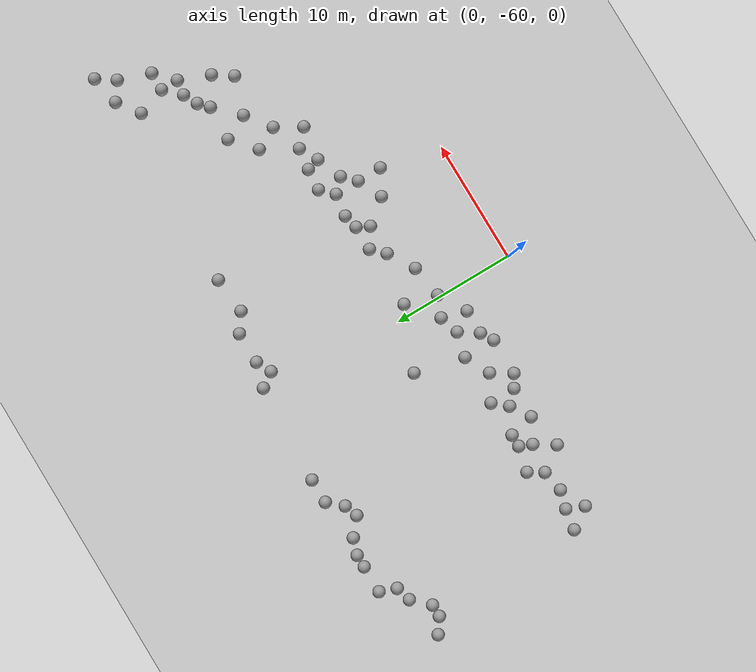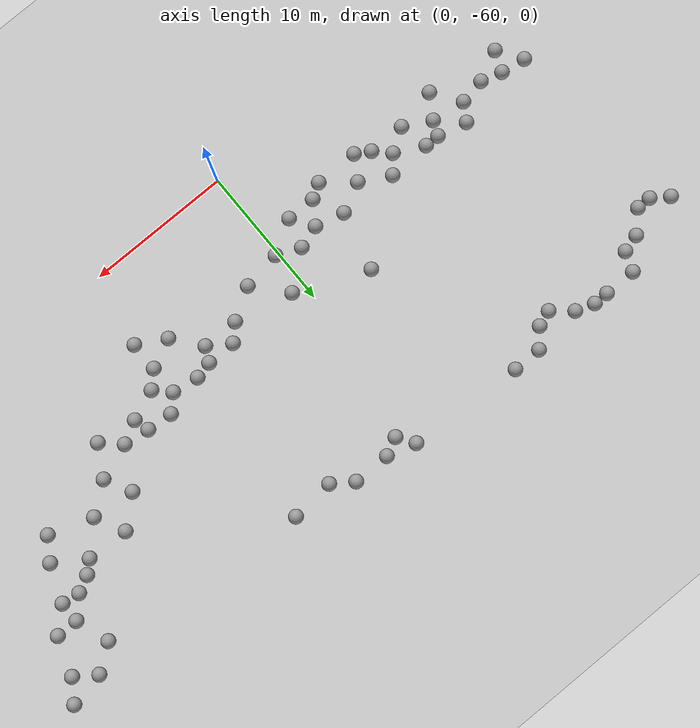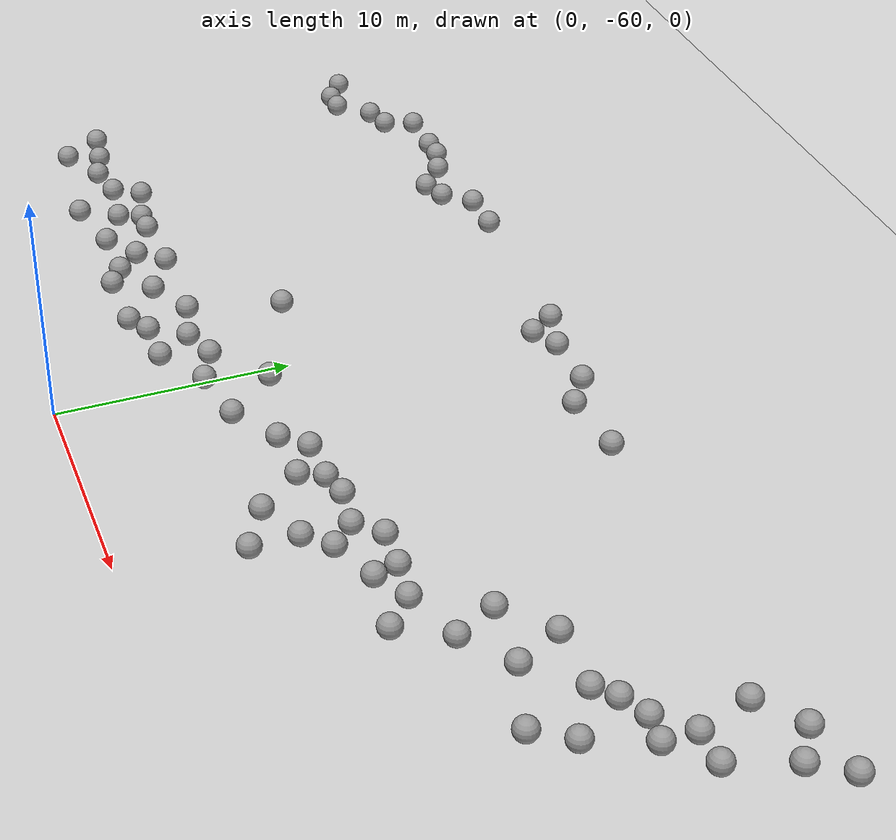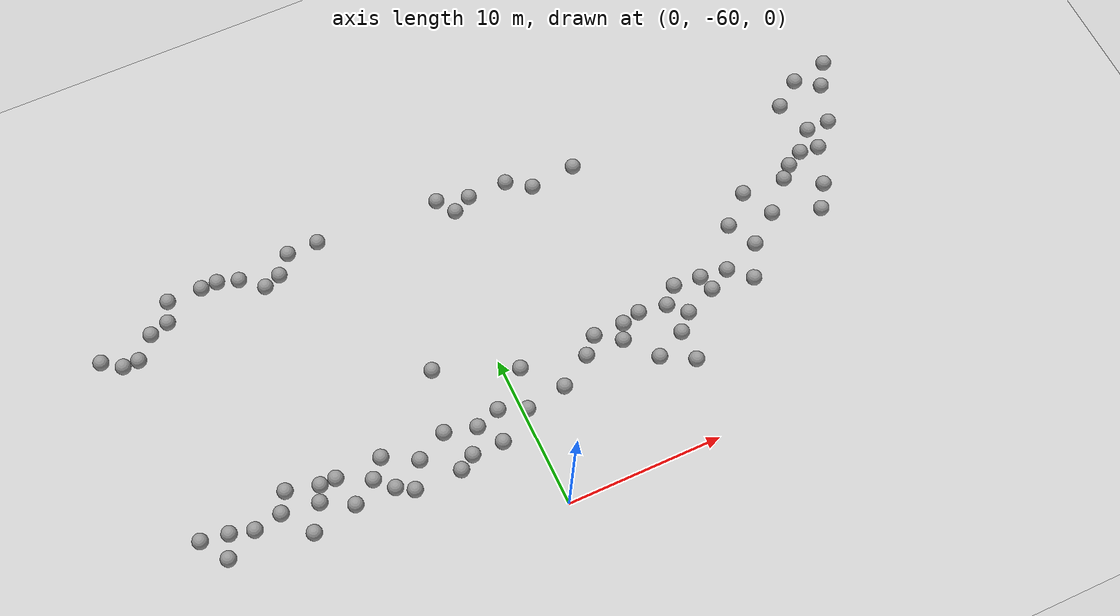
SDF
<sdf version="1.6">
 <world name="default">
  <model name="ground_plane">
   <static>1</static>
   <link name="link">
    <collision name="collision">
     <geometry><plane><normal>0 0 1</normal><size>100 100</size></plane></geometry>
     <surface><friction><ode><mu>100</mu><mu2>50</mu2></ode></friction></surface>
    </collision>
    <visual name="visual">
     <cast_shadows>0</cast_shadows>
     <geometry><plane><normal>0 0 1</normal><size>100 100</size></plane></geometry>
     <material>
      <script><uri>file://media/materials/scripts/gazebo.material</uri><name>Gazebo/Grey</name></script>
     </material>
    </visual>
   </link>
  </model>
  <model name="unit_sphere_0_clone_24">
   <pose>22.6448 -45.4054 0.5 -0.042295 0.045819 -0.000971</pose>
   <link name="link">
    <inertial>
     <mass>1</mass>
     <inertia><ixx>0.1</ixx><ixy>0</ixy><ixz>0</ixz><iyy>0.1</iyy><iyz>0</iyz><izz>0.1</izz></inertia>
    </inertial>
    <collision name="collision"><geometry><sphere><radius>0.5</radius></sphere></geometry></collision>
    <visual name="visual">
     <geometry><sphere><radius>0.5</radius></sphere></geometry>
     <material>
      <script><name>Gazebo/Grey</name><uri>file://media/materials/scripts/gazebo.material</uri></script>
     </material>
    </visual>
   </link>
  </model>
  <model name="unit_sphere_0_clone_25">
   <pose>16.8047 -51.5632 0.5 0 -0 0</pose>
   <link name="link">
    <inertial>
     <mass>1</mass>
     <inertia><ixx>0.1</ixx><ixy>0</ixy><ixz>0</ixz><iyy>0.1</iyy><iyz>0</iyz><izz>0.1</izz></inertia>
    </inertial>
    <collision name="collision"><geometry><sphere><radius>0.5</radius></sphere></geometry></collision>
    <visual name="visual">
     <geometry><sphere><radius>0.5</radius></sphere></geometry>
     <material>
      <script><name>Gazebo/Grey</name><uri>file://media/materials/scripts/gazebo.material</uri></script>
     </material>
    </visual>
   </link>
  </model>
  <model name="unit_sphere_0_clone_26">
   <pose>9.03106 -53.9187 0.5 0 -0 0</pose>
   <link name="link">
    <inertial>
     <mass>1</mass>
     <inertia><ixx>0.1</ixx><ixy>0</ixy><ixz>0</ixz><iyy>0.1</iyy><iyz>0</iyz><izz>0.1</izz></inertia>
    </inertial>
    <collision name="collision"><geometry><sphere><radius>0.5</radius></sphere></geometry></collision>
    <visual name="visual">
     <geometry><sphere><radius>0.5</radius></sphere></geometry>
     <material>
      <script><name>Gazebo/Grey</name><uri>file://media/materials/scripts/gazebo.material</uri></script>
     </material>
    </visual>
   </link>
  </model>
  <model name="unit_sphere_0_clone_27">
   <pose>0.231399 -53.6899 0.5 0 -0 0</pose>
   <link name="link">
    <inertial>
     <mass>1</mass>
     <inertia><ixx>0.1</ixx><ixy>0</ixy><ixz>0</ixz><iyy>0.1</iyy><iyz>0</iyz><izz>0.1</izz></inertia>
    </inertial>
    <collision name="collision"><geometry><sphere><radius>0.5</radius></sphere></geometry></collision>
    <visual name="visual">
     <geometry><sphere><radius>0.5</radius></sphere></geometry>
     <material>
      <script><name>Gazebo/Grey</name><uri>file://media/materials/scripts/gazebo.material</uri></script>
     </material>
    </visual>
   </link>
  </model>
  <model name="unit_sphere_0_clone_28">
   <pose>-9.04954 -52.8887 0.5 0 -0 0</pose>
   <link name="link">
    <inertial>
     <mass>1</mass>
     <inertia><ixx>0.1</ixx><ixy>0</ixy><ixz>0</ixz><iyy>0.1</iyy><iyz>0</iyz><izz>0.1</izz></inertia>
    </inertial>
    <collision name="collision"><geometry><sphere><radius>0.5</radius></sphere></geometry></collision>
    <visual name="visual">
     <geometry><sphere><radius>0.5</radius></sphere></geometry>
     <material>
      <script><name>Gazebo/Grey</name><uri>file://media/materials/scripts/gazebo.material</uri></script>
     </material>
    </visual>
   </link>
  </model>
  <model name="unit_sphere_0_clone_29">
   <pose>-15.0281 -52.5018 0.5 0 -0 0</pose>
   <link name="link">
    <inertial>
     <mass>1</mass>
     <inertia><ixx>0.1</ixx><ixy>0</ixy><ixz>0</ixz><iyy>0.1</iyy><iyz>0</iyz><izz>0.1</izz></inertia>
    </inertial>
    <collision name="collision"><geometry><sphere><radius>0.5</radius></sphere></geometry></collision>
    <visual name="visual">
     <geometry><sphere><radius>0.5</radius></sphere></geometry>
     <material>
      <script><name>Gazebo/Grey</name><uri>file://media/materials/scripts/gazebo.material</uri></script>
     </material>
    </visual>
   </link>
  </model>
  <model name="unit_sphere_0_clone_30">
   <pose>-20.6916 -53.3218 0.5 0 -0 0</pose>
   <link name="link">
    <inertial>
     <mass>1</mass>
     <inertia><ixx>0.1</ixx><ixy>0</ixy><ixz>0</ixz><iyy>0.1</iyy><iyz>0</iyz><izz>0.1</izz></inertia>
    </inertial>
    <collision name="collision"><geometry><sphere><radius>0.5</radius></sphere></geometry></collision>
    <visual name="visual">
     <geometry><sphere><radius>0.5</radius></sphere></geometry>
     <material>
      <script><name>Gazebo/Grey</name><uri>file://media/materials/scripts/gazebo.material</uri></script>
     </material>
    </visual>
   </link>
  </model>
  <model name="unit_sphere_0_clone_55">
   <pose>9.98079 -39.7392 0.5 0 -0 0</pose>
   <link name="link">
    <inertial>
     <mass>1</mass>
     <inertia><ixx>0.1</ixx><ixy>0</ixy><ixz>0</ixz><iyy>0.1</iyy><iyz>0</iyz><izz>0.1</izz></inertia>
    </inertial>
    <collision name="collision"><geometry><sphere><radius>0.5</radius></sphere></geometry></collision>
    <visual name="visual">
     <geometry><sphere><radius>0.5</radius></sphere></geometry>
     <material>
      <script><name>Gazebo/Grey</name><uri>file://media/materials/scripts/gazebo.material</uri></script>
     </material>
    </visual>
   </link>
  </model>
  <model name="unit_sphere_0_clone_56">
   <pose>1.79014 -39.5912 0.5 0 -0 0</pose>
   <link name="link">
    <inertial>
     <mass>1</mass>
     <inertia><ixx>0.1</ixx><ixy>0</ixy><ixz>0</ixz><iyy>0.1</iyy><iyz>0</iyz><izz>0.1</izz></inertia>
    </inertial>
    <collision name="collision"><geometry><sphere><radius>0.5</radius></sphere></geometry></collision>
    <visual name="visual">
     <geometry><sphere><radius>0.5</radius></sphere></geometry>
     <material>
      <script><name>Gazebo/Grey</name><uri>file://media/materials/scripts/gazebo.material</uri></script>
     </material>
    </visual>
   </link>
  </model>
  <model name="unit_sphere_0_clone_57">
   <pose>-11.1183 -39.5447 0.5 0 -0 0</pose>
   <link name="link">
    <inertial>
     <mass>1</mass>
     <inertia><ixx>0.1</ixx><ixy>0</ixy><ixz>0</ixz><iyy>0.1</iyy><iyz>0</iyz><izz>0.1</izz></inertia>
    </inertial>
    <collision name="collision"><geometry><sphere><radius>0.5</radius></sphere></geometry></collision>
    <visual name="visual">
     <geometry><sphere><radius>0.5</radius></sphere></geometry>
     <material>
      <script><name>Gazebo/Grey</name><uri>file://media/materials/scripts/gazebo.material</uri></script>
     </material>
    </visual>
   </link>
  </model>
  <model name="unit_sphere_0_clone_77">
   <pose>-21 -41 0.5 0 -0 0</pose>
   <link name="link">
    <inertial>
     <mass>1</mass>
     <inertia><ixx>0.1</ixx><ixy>0</ixy><ixz>0</ixz><iyy>0.1</iyy><iyz>0</iyz><izz>0.1</izz></inertia>
    </inertial>
    <collision name="collision"><geometry><sphere><radius>0.5</radius></sphere></geometry></collision>
    <visual name="visual">
     <geometry><sphere><radius>0.5</radius></sphere></geometry>
     <material>
      <script><name>Gazebo/Grey</name><uri>file://media/materials/scripts/gazebo.material</uri></script>
     </material>
    </visual>
   </link>
  </model>
  <model name="unit_sphere_0_clone_124">
   <pose>24.2338 -41.2787 0.5 0 -0 0</pose>
   <link name="link">
    <inertial>
     <mass>1</mass>
     <inertia><ixx>0.1</ixx><ixy>0</ixy><ixz>0</ixz><iyy>0.1</iyy><iyz>0</iyz><izz>0.1</izz></inertia>
    </inertial>
    <collision name="collision"><geometry><sphere><radius>0.5</radius></sphere></geometry></collision>
    <visual name="visual">
     <geometry><sphere><radius>0.5</radius></sphere></geometry>
     <material>
      <script><name>Gazebo/Grey</name><uri>file://media/materials/scripts/gazebo.material</uri></script>
     </material>
    </visual>
   </link>
  </model>
  <model name="unit_sphere_0_clone_125">
   <pose>28.4175 -39.5393 0.5 0 -0 0</pose>
   <link name="link">
    <inertial>
     <mass>1</mass>
     <inertia><ixx>0.1</ixx><ixy>0</ixy><ixz>0</ixz><iyy>0.1</iyy><iyz>0</iyz><izz>0.1</izz></inertia>
    </inertial>
    <collision name="collision"><geometry><sphere><radius>0.5</radius></sphere></geometry></collision>
    <visual name="visual">
     <geometry><sphere><radius>0.5</radius></sphere></geometry>
     <material>
      <script><name>Gazebo/Grey</name><uri>file://media/materials/scripts/gazebo.material</uri></script>
     </material>
    </visual>
   </link>
  </model>
  <model name="unit_sphere_0_clone_126">
   <pose>17.0681 -47.6854 0.5 0 -0 0</pose>
   <link name="link">
    <inertial>
     <mass>1</mass>
     <inertia><ixx>0.1</ixx><ixy>0</ixy><ixz>0</ixz><iyy>0.1</iyy><iyz>0</iyz><izz>0.1</izz></inertia>
    </inertial>
    <collision name="collision"><geometry><sphere><radius>0.5</radius></sphere></geometry></collision>
    <visual name="visual">
     <geometry><sphere><radius>0.5</radius></sphere></geometry>
     <material>
      <script><name>Gazebo/Grey</name><uri>file://media/materials/scripts/gazebo.material</uri></script>
     </material>
    </visual>
   </link>
  </model>
  <model name="unit_sphere_0_clone_127">
   <pose>11 -55 0.5 0 -0 0</pose>
   <link name="link">
    <inertial>
     <mass>1</mass>
     <inertia><ixx>0.1</ixx><ixy>0</ixy><ixz>0</ixz><iyy>0.1</iyy><iyz>0</iyz><izz>0.1</izz></inertia>
    </inertial>
    <collision name="collision"><geometry><sphere><radius>0.5</radius></sphere></geometry></collision>
    <visual name="visual">
     <geometry><sphere><radius>0.5</radius></sphere></geometry>
     <material>
      <script><name>Gazebo/Grey</name><uri>file://media/materials/scripts/gazebo.material</uri></script>
     </material>
    </visual>
   </link>
  </model>
  <model name="unit_sphere_0_clone_128">
   <pose>5 -52 0.5 0 -0 0</pose>
   <link name="link">
    <inertial>
     <mass>1</mass>
     <inertia><ixx>0.1</ixx><ixy>0</ixy><ixz>0</ixz><iyy>0.1</iyy><iyz>0</iyz><izz>0.1</izz></inertia>
    </inertial>
    <collision name="collision"><geometry><sphere><radius>0.5</radius></sphere></geometry></collision>
    <visual name="visual">
     <geometry><sphere><radius>0.5</radius></sphere></geometry>
     <material>
      <script><name>Gazebo/Grey</name><uri>file://media/materials/scripts/gazebo.material</uri></script>
     </material>
    </visual>
   </link>
  </model>
  <model name="unit_sphere_0_clone_129">
   <pose>-4 -49 0.5 0 -0 0</pose>
   <link name="link">
    <inertial>
     <mass>1</mass>
     <inertia><ixx>0.1</ixx><ixy>0</ixy><ixz>0</ixz><iyy>0.1</iyy><iyz>0</iyz><izz>0.1</izz></inertia>
    </inertial>
    <collision name="collision"><geometry><sphere><radius>0.5</radius></sphere></geometry></collision>
    <visual name="visual">
     <geometry><sphere><radius>0.5</radius></sphere></geometry>
     <material>
      <script><name>Gazebo/Grey</name><uri>file://media/materials/scripts/gazebo.material</uri></script>
     </material>
    </visual>
   </link>
  </model>
  <model name="unit_sphere_0_clone_130">
   <pose>-5 -55.5967 0.5 0 -0 0</pose>
   <link name="link">
    <inertial>
     <mass>1</mass>
     <inertia><ixx>0.1</ixx><ixy>0</ixy><ixz>0</ixz><iyy>0.1</iyy><iyz>0</iyz><izz>0.1</izz></inertia>
    </inertial>
    <collision name="collision"><geometry><sphere><radius>0.5</radius></sphere></geometry></collision>
    <visual name="visual">
     <geometry><sphere><radius>0.5</radius></sphere></geometry>
     <material>
      <script><name>Gazebo/Grey</name><uri>file://media/materials/scripts/gazebo.material</uri></script>
     </material>
    </visual>
   </link>
  </model>
  <model name="unit_sphere_0_clone_131">
   <pose>-14.4346 -55.5933 0.5 0 -0 0</pose>
   <link name="link">
    <inertial>
     <mass>1</mass>
     <inertia><ixx>0.1</ixx><ixy>0</ixy><ixz>0</ixz><iyy>0.1</iyy><iyz>0</iyz><izz>0.1</izz></inertia>
    </inertial>
    <collision name="collision"><geometry><sphere><radius>0.5</radius></sphere></geometry></collision>
    <visual name="visual">
     <geometry><sphere><radius>0.5</radius></sphere></geometry>
     <material>
      <script><name>Gazebo/Grey</name><uri>file://media/materials/scripts/gazebo.material</uri></script>
     </material>
    </visual>
   </link>
  </model>
  <model name="unit_sphere_0_clone_132">
   <pose>-19.5741 -55 0.5 0 -0 0</pose>
   <link name="link">
    <inertial>
     <mass>1</mass>
     <inertia><ixx>0.1</ixx><ixy>0</ixy><ixz>0</ixz><iyy>0.1</iyy><iyz>0</iyz><izz>0.1</izz></inertia>
    </inertial>
    <collision name="collision"><geometry><sphere><radius>0.5</radius></sphere></geometry></collision>
    <visual name="visual">
     <geometry><sphere><radius>0.5</radius></sphere></geometry>
     <material>
      <script><name>Gazebo/Grey</name><uri>file://media/materials/scripts/gazebo.material</uri></script>
     </material>
    </visual>
   </link>
  </model>
  <model name="unit_sphere_0_clone_145">
   <pose>0.957135 -51.0925 0.5 0 -0 0</pose>
   <link name="link">
    <inertial>
     <mass>1</mass>
     <inertia><ixx>0.1</ixx><ixy>0</ixy><ixz>0</ixz><iyy>0.1</iyy><iyz>0</iyz><izz>0.1</izz></inertia>
    </inertial>
    <collision name="collision"><geometry><sphere><radius>0.5</radius></sphere></geometry></collision>
    <visual name="visual">
     <geometry><sphere><radius>0.5</radius></sphere></geometry>
     <material>
      <script><name>Gazebo/Grey</name><uri>file://media/materials/scripts/gazebo.material</uri></script>
     </material>
    </visual>
   </link>
  </model>
  <model name="unit_sphere_0_clone_146">
   <pose>13.7694 -50.1461 0.5 -0.070266 -0.018956 0.000648</pose>
   <link name="link">
    <inertial>
     <mass>1</mass>
     <inertia><ixx>0.1</ixx><ixy>0</ixy><ixz>0</ixz><iyy>0.1</iyy><iyz>0</iyz><izz>0.1</izz></inertia>
    </inertial>
    <collision name="collision"><geometry><sphere><radius>0.5</radius></sphere></geometry></collision>
    <visual name="visual">
     <geometry><sphere><radius>0.5</radius></sphere></geometry>
     <material>
      <script><name>Gazebo/Grey</name><uri>file://media/materials/scripts/gazebo.material</uri></script>
     </material>
    </visual>
   </link>
  </model>
  <model name="unit_sphere_0_clone_147">
   <pose>9.18305 -50.7277 0.5 0 -0 0</pose>
   <link name="link">
    <inertial>
     <mass>1</mass>
     <inertia><ixx>0.1</ixx><ixy>0</ixy><ixz>0</ixz><iyy>0.1</iyy><iyz>0</iyz><izz>0.1</izz></inertia>
    </inertial>
    <collision name="collision"><geometry><sphere><radius>0.5</radius></sphere></geometry></collision>
    <visual name="visual">
     <geometry><sphere><radius>0.5</radius></sphere></geometry>
     <material>
      <script><name>Gazebo/Grey</name><uri>file://media/materials/scripts/gazebo.material</uri></script>
     </material>
    </visual>
   </link>
  </model>
  <model name="unit_sphere_1_clone_19">
   <pose>7 -40 0.5 0 -0 0</pose>
   <link name="link">
    <inertial>
     <mass>1</mass>
     <inertia><ixx>0.1</ixx><ixy>0</ixy><ixz>0</ixz><iyy>0.1</iyy><iyz>0</iyz><izz>0.1</izz></inertia>
    </inertial>
    <collision name="collision"><geometry><sphere><radius>0.5</radius></sphere></geometry></collision>
    <visual name="visual">
     <geometry><sphere><radius>0.5</radius></sphere></geometry>
     <material>
      <script><name>Gazebo/Grey</name><uri>file://media/materials/scripts/gazebo.material</uri></script>
     </material>
    </visual>
   </link>
  </model>
  <model name="unit_sphere_1_clone_22">
   <pose>5.56417 -39 0.5 0 -0 0</pose>
   <link name="link">
    <inertial>
     <mass>1</mass>
     <inertia><ixx>0.1</ixx><ixy>0</ixy><ixz>0</ixz><iyy>0.1</iyy><iyz>0</iyz><izz>0.1</izz></inertia>
    </inertial>
    <collision name="collision"><geometry><sphere><radius>0.5</radius></sphere></geometry></collision>
    <visual name="visual">
     <geometry><sphere><radius>0.5</radius></sphere></geometry>
     <material>
      <script><name>Gazebo/Grey</name><uri>file://media/materials/scripts/gazebo.material</uri></script>
     </material>
    </visual>
   </link>
  </model>
  <model name="unit_sphere_1_clone_23">
   <pose>3 -39 0.5 0 -0 0</pose>
   <link name="link">
    <inertial>
     <mass>1</mass>
     <inertia><ixx>0.1</ixx><ixy>0</ixy><ixz>0</ixz><iyy>0.1</iyy><iyz>0</iyz><izz>0.1</izz></inertia>
    </inertial>
    <collision name="collision"><geometry><sphere><radius>0.5</radius></sphere></geometry></collision>
    <visual name="visual">
     <geometry><sphere><radius>0.5</radius></sphere></geometry>
     <material>
      <script><name>Gazebo/Grey</name><uri>file://media/materials/scripts/gazebo.material</uri></script>
     </material>
    </visual>
   </link>
  </model>
  <model name="unit_sphere_1_clone_24">
   <pose>1 -38.4231 0.5 0 -0 0</pose>
   <link name="link">
    <inertial>
     <mass>1</mass>
     <inertia><ixx>0.1</ixx><ixy>0</ixy><ixz>0</ixz><iyy>0.1</iyy><iyz>0</iyz><izz>0.1</izz></inertia>
    </inertial>
    <collision name="collision"><geometry><sphere><radius>0.5</radius></sphere></geometry></collision>
    <visual name="visual">
     <geometry><sphere><radius>0.5</radius></sphere></geometry>
     <material>
      <script><name>Gazebo/Grey</name><uri>file://media/materials/scripts/gazebo.material</uri></script>
     </material>
    </visual>
   </link>
  </model>
  <model name="unit_sphere_1_clone_30">
   <pose>-7 -38 0.5 0 -0 0</pose>
   <link name="link">
    <inertial>
     <mass>1</mass>
     <inertia><ixx>0.1</ixx><ixy>0</ixy><ixz>0</ixz><iyy>0.1</iyy><iyz>0</iyz><izz>0.1</izz></inertia>
    </inertial>
    <collision name="collision"><geometry><sphere><radius>0.5</radius></sphere></geometry></collision>
    <visual name="visual">
     <geometry><sphere><radius>0.5</radius></sphere></geometry>
     <material>
      <script><name>Gazebo/Grey</name><uri>file://media/materials/scripts/gazebo.material</uri></script>
     </material>
    </visual>
   </link>
  </model>
  <model name="unit_sphere_1_clone_31">
   <pose>-9 -38 0.5 0 -0 0</pose>
   <link name="link">
    <inertial>
     <mass>1</mass>
     <inertia><ixx>0.1</ixx><ixy>0</ixy><ixz>0</ixz><iyy>0.1</iyy><iyz>0</iyz><izz>0.1</izz></inertia>
    </inertial>
    <collision name="collision"><geometry><sphere><radius>0.5</radius></sphere></geometry></collision>
    <visual name="visual">
     <geometry><sphere><radius>0.5</radius></sphere></geometry>
     <material>
      <script><name>Gazebo/Grey</name><uri>file://media/materials/scripts/gazebo.material</uri></script>
     </material>
    </visual>
   </link>
  </model>
  <model name="unit_sphere_1_clone_32">
   <pose>-10.0346 -39.1596 0.5 0 -0 0</pose>
   <link name="link">
    <inertial>
     <mass>1</mass>
     <inertia><ixx>0.1</ixx><ixy>0</ixy><ixz>0</ixz><iyy>0.1</iyy><iyz>0</iyz><izz>0.1</izz></inertia>
    </inertial>
    <collision name="collision"><geometry><sphere><radius>0.5</radius></sphere></geometry></collision>
    <visual name="visual">
     <geometry><sphere><radius>0.5</radius></sphere></geometry>
     <material>
      <script><name>Gazebo/Grey</name><uri>file://media/materials/scripts/gazebo.material</uri></script>
     </material>
    </visual>
   </link>
  </model>
  <model name="unit_sphere_1_clone_33">
   <pose>-12.4488 -38.4317 0.5 0 -0 0</pose>
   <link name="link">
    <inertial>
     <mass>1</mass>
     <inertia><ixx>0.1</ixx><ixy>0</ixy><ixz>0</ixz><iyy>0.1</iyy><iyz>0</iyz><izz>0.1</izz></inertia>
    </inertial>
    <collision name="collision"><geometry><sphere><radius>0.5</radius></sphere></geometry></collision>
    <visual name="visual">
     <geometry><sphere><radius>0.5</radius></sphere></geometry>
     <material>
      <script><name>Gazebo/Grey</name><uri>file://media/materials/scripts/gazebo.material</uri></script>
     </material>
    </visual>
   </link>
  </model>
  <model name="unit_sphere_1_clone_34">
   <pose>-13.7459 -38 0.5 0 0.036299 0</pose>
   <link name="link">
    <inertial>
     <mass>1</mass>
     <inertia><ixx>0.1</ixx><ixy>0</ixy><ixz>0</ixz><iyy>0.1</iyy><iyz>0</iyz><izz>0.1</izz></inertia>
    </inertial>
    <collision name="collision"><geometry><sphere><radius>0.5</radius></sphere></geometry></collision>
    <visual name="visual">
     <geometry><sphere><radius>0.5</radius></sphere></geometry>
     <material>
      <script><name>Gazebo/Grey</name><uri>file://media/materials/scripts/gazebo.material</uri></script>
     </material>
    </visual>
   </link>
  </model>
  <model name="unit_sphere_1_clone_35">
   <pose>-14.782 -38 0.5 0 -0.036119 0</pose>
   <link name="link">
    <inertial>
     <mass>1</mass>
     <inertia><ixx>0.1</ixx><ixy>0</ixy><ixz>0</ixz><iyy>0.1</iyy><iyz>0</iyz><izz>0.1</izz></inertia>
    </inertial>
    <collision name="collision"><geometry><sphere><radius>0.5</radius></sphere></geometry></collision>
    <visual name="visual">
     <geometry><sphere><radius>0.5</radius></sphere></geometry>
     <material>
      <script><name>Gazebo/Grey</name><uri>file://media/materials/scripts/gazebo.material</uri></script>
     </material>
    </visual>
   </link>
  </model>
  <model name="unit_sphere_1_clone_37">
   <pose>-17 -38 0.5 0 -0 0</pose>
   <link name="link">
    <inertial>
     <mass>1</mass>
     <inertia><ixx>0.1</ixx><ixy>0</ixy><ixz>0</ixz><iyy>0.1</iyy><iyz>0</iyz><izz>0.1</izz></inertia>
    </inertial>
    <collision name="collision"><geometry><sphere><radius>0.5</radius></sphere></geometry></collision>
    <visual name="visual">
     <geometry><sphere><radius>0.5</radius></sphere></geometry>
     <material>
      <script><name>Gazebo/Grey</name><uri>file://media/materials/scripts/gazebo.material</uri></script>
     </material>
    </visual>
   </link>
  </model>
  <model name="unit_sphere_1_clone_38">
   <pose>-18.7256 -39.6777 0.5 0 -0 0</pose>
   <link name="link">
    <inertial>
     <mass>1</mass>
     <inertia><ixx>0.1</ixx><ixy>0</ixy><ixz>0</ixz><iyy>0.1</iyy><iyz>0</iyz><izz>0.1</izz></inertia>
    </inertial>
    <collision name="collision"><geometry><sphere><radius>0.5</radius></sphere></geometry></collision>
    <visual name="visual">
     <geometry><sphere><radius>0.5</radius></sphere></geometry>
     <material>
      <script><name>Gazebo/Grey</name><uri>file://media/materials/scripts/gazebo.material</uri></script>
     </material>
    </visual>
   </link>
  </model>
  <model name="unit_sphere_1_clone_39">
   <pose>-17.5 -39.3317 0.5 0 -0 0</pose>
   <link name="link">
    <inertial>
     <mass>1</mass>
     <inertia><ixx>0.1</ixx><ixy>0</ixy><ixz>0</ixz><iyy>0.1</iyy><iyz>0</iyz><izz>0.1</izz></inertia>
    </inertial>
    <collision name="collision"><geometry><sphere><radius>0.5</radius></sphere></geometry></collision>
    <visual name="visual">
     <geometry><sphere><radius>0.5</radius></sphere></geometry>
     <material>
      <script><name>Gazebo/Grey</name><uri>file://media/materials/scripts/gazebo.material</uri></script>
     </material>
    </visual>
   </link>
  </model>
  <model name="unit_sphere_1_clone_40">
   <pose>-20 -41 0.5 0 -0 0</pose>
   <link name="link">
    <inertial>
     <mass>1</mass>
     <inertia><ixx>0.1</ixx><ixy>0</ixy><ixz>0</ixz><iyy>0.1</iyy><iyz>0</iyz><izz>0.1</izz></inertia>
    </inertial>
    <collision name="collision"><geometry><sphere><radius>0.5</radius></sphere></geometry></collision>
    <visual name="visual">
     <geometry><sphere><radius>0.5</radius></sphere></geometry>
     <material>
      <script><name>Gazebo/Grey</name><uri>file://media/materials/scripts/gazebo.material</uri></script>
     </material>
    </visual>
   </link>
  </model>
  <model name="unit_sphere_1_clone_41">
   <pose>-22.1495 -40.1932 0.5 0 -0 0</pose>
   <link name="link">
    <inertial>
     <mass>1</mass>
     <inertia><ixx>0.1</ixx><ixy>0</ixy><ixz>0</ixz><iyy>0.1</iyy><iyz>0</iyz><izz>0.1</izz></inertia>
    </inertial>
    <collision name="collision"><geometry><sphere><radius>0.5</radius></sphere></geometry></collision>
    <visual name="visual">
     <geometry><sphere><radius>0.5</radius></sphere></geometry>
     <material>
      <script><name>Gazebo/Grey</name><uri>file://media/materials/scripts/gazebo.material</uri></script>
     </material>
    </visual>
   </link>
  </model>
  <model name="unit_sphere_1_clone_235">
   <pose>-18.9876 -53.5888 0.5 0 -0 0</pose>
   <link name="link">
    <inertial>
     <mass>1</mass>
     <inertia><ixx>0.1</ixx><ixy>0</ixy><ixz>0</ixz><iyy>0.1</iyy><iyz>0</iyz><izz>0.1</izz></inertia>
    </inertial>
    <collision name="collision"><geometry><sphere><radius>0.5</radius></sphere></geometry></collision>
    <visual name="visual">
     <geometry><sphere><radius>0.5</radius></sphere></geometry>
     <material>
      <script><name>Gazebo/Grey</name><uri>file://media/materials/scripts/gazebo.material</uri></script>
     </material>
    </visual>
   </link>
  </model>
  <model name="unit_sphere_1_clone_236">
   <pose>-17.5298 -54 0.5 0 -0 0</pose>
   <link name="link">
    <inertial>
     <mass>1</mass>
     <inertia><ixx>0.1</ixx><ixy>0</ixy><ixz>0</ixz><iyy>0.1</iyy><iyz>0</iyz><izz>0.1</izz></inertia>
    </inertial>
    <collision name="collision"><geometry><sphere><radius>0.5</radius></sphere></geometry></collision>
    <visual name="visual">
     <geometry><sphere><radius>0.5</radius></sphere></geometry>
     <material>
      <script><name>Gazebo/Grey</name><uri>file://media/materials/scripts/gazebo.material</uri></script>
     </material>
    </visual>
   </link>
  </model>
  <model name="unit_sphere_1_clone_237">
   <pose>-15.7616 -53.6875 0.5 0 -0 0</pose>
   <link name="link">
    <inertial>
     <mass>1</mass>
     <inertia><ixx>0.1</ixx><ixy>0</ixy><ixz>0</ixz><iyy>0.1</iyy><iyz>0</iyz><izz>0.1</izz></inertia>
    </inertial>
    <collision name="collision"><geometry><sphere><radius>0.5</radius></sphere></geometry></collision>
    <visual name="visual">
     <geometry><sphere><radius>0.5</radius></sphere></geometry>
     <material>
      <script><name>Gazebo/Grey</name><uri>file://media/materials/scripts/gazebo.material</uri></script>
     </material>
    </visual>
   </link>
  </model>
  <model name="unit_sphere_1_clone_238">
   <pose>-13.4303 -54 0.5 0 -0 0</pose>
   <link name="link">
    <inertial>
     <mass>1</mass>
     <inertia><ixx>0.1</ixx><ixy>0</ixy><ixz>0</ixz><iyy>0.1</iyy><iyz>0</iyz><izz>0.1</izz></inertia>
    </inertial>
    <collision name="collision"><geometry><sphere><radius>0.5</radius></sphere></geometry></collision>
    <visual name="visual">
     <geometry><sphere><radius>0.5</radius></sphere></geometry>
     <material>
      <script><name>Gazebo/Grey</name><uri>file://media/materials/scripts/gazebo.material</uri></script>
     </material>
    </visual>
   </link>
  </model>
  <model name="unit_sphere_1_clone_239">
   <pose>-13 -53 0.5 0 -0 0</pose>
   <link name="link">
    <inertial>
     <mass>1</mass>
     <inertia><ixx>0.1</ixx><ixy>0</ixy><ixz>0</ixz><iyy>0.1</iyy><iyz>0</iyz><izz>0.1</izz></inertia>
    </inertial>
    <collision name="collision"><geometry><sphere><radius>0.5</radius></sphere></geometry></collision>
    <visual name="visual">
     <geometry><sphere><radius>0.5</radius></sphere></geometry>
     <material>
      <script><name>Gazebo/Grey</name><uri>file://media/materials/scripts/gazebo.material</uri></script>
     </material>
    </visual>
   </link>
  </model>
  <model name="unit_sphere_1_clone_240">
   <pose>-12 -53 0.5 0 -0 0</pose>
   <link name="link">
    <inertial>
     <mass>1</mass>
     <inertia><ixx>0.1</ixx><ixy>0</ixy><ixz>0</ixz><iyy>0.1</iyy><iyz>0</iyz><izz>0.1</izz></inertia>
    </inertial>
    <collision name="collision"><geometry><sphere><radius>0.5</radius></sphere></geometry></collision>
    <visual name="visual">
     <geometry><sphere><radius>0.5</radius></sphere></geometry>
     <material>
      <script><name>Gazebo/Grey</name><uri>file://media/materials/scripts/gazebo.material</uri></script>
     </material>
    </visual>
   </link>
  </model>
  <model name="unit_sphere_1_clone_241">
   <pose>-11.5529 -55 0.5 0 -0 0</pose>
   <link name="link">
    <inertial>
     <mass>1</mass>
     <inertia><ixx>0.1</ixx><ixy>0</ixy><ixz>0</ixz><iyy>0.1</iyy><iyz>0</iyz><izz>0.1</izz></inertia>
    </inertial>
    <collision name="collision"><geometry><sphere><radius>0.5</radius></sphere></geometry></collision>
    <visual name="visual">
     <geometry><sphere><radius>0.5</radius></sphere></geometry>
     <material>
      <script><name>Gazebo/Grey</name><uri>file://media/materials/scripts/gazebo.material</uri></script>
     </material>
    </visual>
   </link>
  </model>
  <model name="unit_sphere_1_clone_242">
   <pose>-10 -54 0.5 0 -0 0</pose>
   <link name="link">
    <inertial>
     <mass>1</mass>
     <inertia><ixx>0.1</ixx><ixy>0</ixy><ixz>0</ixz><iyy>0.1</iyy><iyz>0</iyz><izz>0.1</izz></inertia>
    </inertial>
    <collision name="collision"><geometry><sphere><radius>0.5</radius></sphere></geometry></collision>
    <visual name="visual">
     <geometry><sphere><radius>0.5</radius></sphere></geometry>
     <material>
      <script><name>Gazebo/Grey</name><uri>file://media/materials/scripts/gazebo.material</uri></script>
     </material>
    </visual>
   </link>
  </model>
  <model name="unit_sphere_1_clone_243">
   <pose>-9 -55 0.5 0 -0 0</pose>
   <link name="link">
    <inertial>
     <mass>1</mass>
     <inertia><ixx>0.1</ixx><ixy>0</ixy><ixz>0</ixz><iyy>0.1</iyy><iyz>0</iyz><izz>0.1</izz></inertia>
    </inertial>
    <collision name="collision"><geometry><sphere><radius>0.5</radius></sphere></geometry></collision>
    <visual name="visual">
     <geometry><sphere><radius>0.5</radius></sphere></geometry>
     <material>
      <script><name>Gazebo/Grey</name><uri>file://media/materials/scripts/gazebo.material</uri></script>
     </material>
    </visual>
   </link>
  </model>
  <model name="unit_sphere_1_clone_244">
   <pose>-7 -54 0.5 0 -0 0</pose>
   <link name="link">
    <inertial>
     <mass>1</mass>
     <inertia><ixx>0.1</ixx><ixy>0</ixy><ixz>0</ixz><iyy>0.1</iyy><iyz>0</iyz><izz>0.1</izz></inertia>
    </inertial>
    <collision name="collision"><geometry><sphere><radius>0.5</radius></sphere></geometry></collision>
    <visual name="visual">
     <geometry><sphere><radius>0.5</radius></sphere></geometry>
     <material>
      <script><name>Gazebo/Grey</name><uri>file://media/materials/scripts/gazebo.material</uri></script>
     </material>
    </visual>
   </link>
  </model>
  <model name="unit_sphere_1_clone_245">
   <pose>-5 -53 0.5 0 -0 0</pose>
   <link name="link">
    <inertial>
     <mass>1</mass>
     <inertia><ixx>0.1</ixx><ixy>0</ixy><ixz>0</ixz><iyy>0.1</iyy><iyz>0</iyz><izz>0.1</izz></inertia>
    </inertial>
    <collision name="collision"><geometry><sphere><radius>0.5</radius></sphere></geometry></collision>
    <visual name="visual">
     <geometry><sphere><radius>0.5</radius></sphere></geometry>
     <material>
      <script><name>Gazebo/Grey</name><uri>file://media/materials/scripts/gazebo.material</uri></script>
     </material>
    </visual>
   </link>
  </model>
  <model name="unit_sphere_1_clone_246">
   <pose>-8 -55.5989 0.5 0 -0 0</pose>
   <link name="link">
    <inertial>
     <mass>1</mass>
     <inertia><ixx>0.1</ixx><ixy>0</ixy><ixz>0</ixz><iyy>0.1</iyy><iyz>0</iyz><izz>0.1</izz></inertia>
    </inertial>
    <collision name="collision"><geometry><sphere><radius>0.5</radius></sphere></geometry></collision>
    <visual name="visual">
     <geometry><sphere><radius>0.5</radius></sphere></geometry>
     <material>
      <script><name>Gazebo/Grey</name><uri>file://media/materials/scripts/gazebo.material</uri></script>
     </material>
    </visual>
   </link>
  </model>
  <model name="unit_sphere_1_clone_247">
   <pose>-4 -55 0.5 0 -0 0</pose>
   <link name="link">
    <inertial>
     <mass>1</mass>
     <inertia><ixx>0.1</ixx><ixy>0</ixy><ixz>0</ixz><iyy>0.1</iyy><iyz>0</iyz><izz>0.1</izz></inertia>
    </inertial>
    <collision name="collision"><geometry><sphere><radius>0.5</radius></sphere></geometry></collision>
    <visual name="visual">
     <geometry><sphere><radius>0.5</radius></sphere></geometry>
     <material>
      <script><name>Gazebo/Grey</name><uri>file://media/materials/scripts/gazebo.material</uri></script>
     </material>
    </visual>
   </link>
  </model>
  <model name="unit_sphere_1_clone_248">
   <pose>-1.429 -53 0.5 0 -0 0</pose>
   <link name="link">
    <inertial>
     <mass>1</mass>
     <inertia><ixx>0.1</ixx><ixy>0</ixy><ixz>0</ixz><iyy>0.1</iyy><iyz>0</iyz><izz>0.1</izz></inertia>
    </inertial>
    <collision name="collision"><geometry><sphere><radius>0.5</radius></sphere></geometry></collision>
    <visual name="visual">
     <geometry><sphere><radius>0.5</radius></sphere></geometry>
     <material>
      <script><name>Gazebo/Grey</name><uri>file://media/materials/scripts/gazebo.material</uri></script>
     </material>
    </visual>
   </link>
  </model>
  <model name="unit_sphere_1_clone_249">
   <pose>-2 -55 0.5 0 -0 0</pose>
   <link name="link">
    <inertial>
     <mass>1</mass>
     <inertia><ixx>0.1</ixx><ixy>0</ixy><ixz>0</ixz><iyy>0.1</iyy><iyz>0</iyz><izz>0.1</izz></inertia>
    </inertial>
    <collision name="collision"><geometry><sphere><radius>0.5</radius></sphere></geometry></collision>
    <visual name="visual">
     <geometry><sphere><radius>0.5</radius></sphere></geometry>
     <material>
      <script><name>Gazebo/Grey</name><uri>file://media/materials/scripts/gazebo.material</uri></script>
     </material>
    </visual>
   </link>
  </model>
  <model name="unit_sphere_1_clone_250">
   <pose>-3 -53.5026 0.5 0 -0 0</pose>
   <link name="link">
    <inertial>
     <mass>1</mass>
     <inertia><ixx>0.1</ixx><ixy>0</ixy><ixz>0</ixz><iyy>0.1</iyy><iyz>0</iyz><izz>0.1</izz></inertia>
    </inertial>
    <collision name="collision"><geometry><sphere><radius>0.5</radius></sphere></geometry></collision>
    <visual name="visual">
     <geometry><sphere><radius>0.5</radius></sphere></geometry>
     <material>
      <script><name>Gazebo/Grey</name><uri>file://media/materials/scripts/gazebo.material</uri></script>
     </material>
    </visual>
   </link>
  </model>
  <model name="unit_sphere_1_clone_251">
   <pose>2.88978 -53.2858 0.5 0 -0 0</pose>
   <link name="link">
    <inertial>
     <mass>1</mass>
     <inertia><ixx>0.1</ixx><ixy>0</ixy><ixz>0</ixz><iyy>0.1</iyy><iyz>0</iyz><izz>0.1</izz></inertia>
    </inertial>
    <collision name="collision"><geometry><sphere><radius>0.5</radius></sphere></geometry></collision>
    <visual name="visual">
     <geometry><sphere><radius>0.5</radius></sphere></geometry>
     <material>
      <script><name>Gazebo/Grey</name><uri>file://media/materials/scripts/gazebo.material</uri></script>
     </material>
    </visual>
   </link>
  </model>
  <model name="unit_sphere_1_clone_252">
   <pose>6 -51 0.5 0 -0 0</pose>
   <link name="link">
    <inertial>
     <mass>1</mass>
     <inertia><ixx>0.1</ixx><ixy>0</ixy><ixz>0</ixz><iyy>0.1</iyy><iyz>0</iyz><izz>0.1</izz></inertia>
    </inertial>
    <collision name="collision"><geometry><sphere><radius>0.5</radius></sphere></geometry></collision>
    <visual name="visual">
     <geometry><sphere><radius>0.5</radius></sphere></geometry>
     <material>
      <script><name>Gazebo/Grey</name><uri>file://media/materials/scripts/gazebo.material</uri></script>
     </material>
    </visual>
   </link>
  </model>
  <model name="unit_sphere_1_clone_253">
   <pose>7.49742 -52 0.5 0 -0 0</pose>
   <link name="link">
    <inertial>
     <mass>1</mass>
     <inertia><ixx>0.1</ixx><ixy>0</ixy><ixz>0</ixz><iyy>0.1</iyy><iyz>0</iyz><izz>0.1</izz></inertia>
    </inertial>
    <collision name="collision"><geometry><sphere><radius>0.5</radius></sphere></geometry></collision>
    <visual name="visual">
     <geometry><sphere><radius>0.5</radius></sphere></geometry>
     <material>
      <script><name>Gazebo/Grey</name><uri>file://media/materials/scripts/gazebo.material</uri></script>
     </material>
    </visual>
   </link>
  </model>
  <model name="unit_sphere_1_clone_254">
   <pose>8 -51 0.5 0 -0 0</pose>
   <link name="link">
    <inertial>
     <mass>1</mass>
     <inertia><ixx>0.1</ixx><ixy>0</ixy><ixz>0</ixz><iyy>0.1</iyy><iyz>0</iyz><izz>0.1</izz></inertia>
    </inertial>
    <collision name="collision"><geometry><sphere><radius>0.5</radius></sphere></geometry></collision>
    <visual name="visual">
     <geometry><sphere><radius>0.5</radius></sphere></geometry>
     <material>
      <script><name>Gazebo/Grey</name><uri>file://media/materials/scripts/gazebo.material</uri></script>
     </material>
    </visual>
   </link>
  </model>
  <model name="unit_sphere_1_clone_255">
   <pose>11 -53 0.5 0 -0 0</pose>
   <link name="link">
    <inertial>
     <mass>1</mass>
     <inertia><ixx>0.1</ixx><ixy>0</ixy><ixz>0</ixz><iyy>0.1</iyy><iyz>0</iyz><izz>0.1</izz></inertia>
    </inertial>
    <collision name="collision"><geometry><sphere><radius>0.5</radius></sphere></geometry></collision>
    <visual name="visual">
     <geometry><sphere><radius>0.5</radius></sphere></geometry>
     <material>
      <script><name>Gazebo/Grey</name><uri>file://media/materials/scripts/gazebo.material</uri></script>
     </material>
    </visual>
   </link>
  </model>
  <model name="unit_sphere_1_clone_256">
   <pose>12 -50 0.5 0 -0 0</pose>
   <link name="link">
    <inertial>
     <mass>1</mass>
     <inertia><ixx>0.1</ixx><ixy>0</ixy><ixz>0</ixz><iyy>0.1</iyy><iyz>0</iyz><izz>0.1</izz></inertia>
    </inertial>
    <collision name="collision"><geometry><sphere><radius>0.5</radius></sphere></geometry></collision>
    <visual name="visual">
     <geometry><sphere><radius>0.5</radius></sphere></geometry>
     <material>
      <script><name>Gazebo/Grey</name><uri>file://media/materials/scripts/gazebo.material</uri></script>
     </material>
    </visual>
   </link>
  </model>
  <model name="unit_sphere_1_clone_257">
   <pose>12 -52 0.5 0 -0 0</pose>
   <link name="link">
    <inertial>
     <mass>1</mass>
     <inertia><ixx>0.1</ixx><ixy>0</ixy><ixz>0</ixz><iyy>0.1</iyy><iyz>0</iyz><izz>0.1</izz></inertia>
    </inertial>
    <collision name="collision"><geometry><sphere><radius>0.5</radius></sphere></geometry></collision>
    <visual name="visual">
     <geometry><sphere><radius>0.5</radius></sphere></geometry>
     <material>
      <script><name>Gazebo/Grey</name><uri>file://media/materials/scripts/gazebo.material</uri></script>
     </material>
    </visual>
   </link>
  </model>
  <model name="unit_sphere_1_clone_258">
   <pose>14.049 -51.1815 0.5 0.069932 0.018987 0.00065</pose>
   <link name="link">
    <inertial>
     <mass>1</mass>
     <inertia><ixx>0.1</ixx><ixy>0</ixy><ixz>0</ixz><iyy>0.1</iyy><iyz>0</iyz><izz>0.1</izz></inertia>
    </inertial>
    <collision name="collision"><geometry><sphere><radius>0.5</radius></sphere></geometry></collision>
    <visual name="visual">
     <geometry><sphere><radius>0.5</radius></sphere></geometry>
     <material>
      <script><name>Gazebo/Grey</name><uri>file://media/materials/scripts/gazebo.material</uri></script>
     </material>
    </visual>
   </link>
  </model>
  <model name="unit_sphere_1_clone_259">
   <pose>11 -51 0.5 0 -0 0</pose>
   <link name="link">
    <inertial>
     <mass>1</mass>
     <inertia><ixx>0.1</ixx><ixy>0</ixy><ixz>0</ixz><iyy>0.1</iyy><iyz>0</iyz><izz>0.1</izz></inertia>
    </inertial>
    <collision name="collision"><geometry><sphere><radius>0.5</radius></sphere></geometry></collision>
    <visual name="visual">
     <geometry><sphere><radius>0.5</radius></sphere></geometry>
     <material>
      <script><name>Gazebo/Grey</name><uri>file://media/materials/scripts/gazebo.material</uri></script>
     </material>
    </visual>
   </link>
  </model>
  <model name="unit_sphere_1_clone_260">
   <pose>15.526 -50.3817 0.5 0 -0 0</pose>
   <link name="link">
    <inertial>
     <mass>1</mass>
     <inertia><ixx>0.1</ixx><ixy>0</ixy><ixz>0</ixz><iyy>0.1</iyy><iyz>0</iyz><izz>0.1</izz></inertia>
    </inertial>
    <collision name="collision"><geometry><sphere><radius>0.5</radius></sphere></geometry></collision>
    <visual name="visual">
     <geometry><sphere><radius>0.5</radius></sphere></geometry>
     <material>
      <script><name>Gazebo/Grey</name><uri>file://media/materials/scripts/gazebo.material</uri></script>
     </material>
    </visual>
   </link>
  </model>
  <model name="unit_sphere_1_clone_261">
   <pose>18 -49.4937 0.5 0 -0 0</pose>
   <link name="link">
    <inertial>
     <mass>1</mass>
     <inertia><ixx>0.1</ixx><ixy>0</ixy><ixz>0</ixz><iyy>0.1</iyy><iyz>0</iyz><izz>0.1</izz></inertia>
    </inertial>
    <collision name="collision"><geometry><sphere><radius>0.5</radius></sphere></geometry></collision>
    <visual name="visual">
     <geometry><sphere><radius>0.5</radius></sphere></geometry>
     <material>
      <script><name>Gazebo/Grey</name><uri>file://media/materials/scripts/gazebo.material</uri></script>
     </material>
    </visual>
   </link>
  </model>
  <model name="unit_sphere_1_clone_262">
   <pose>20 -48 0.5 0 -0 0</pose>
   <link name="link">
    <inertial>
     <mass>1</mass>
     <inertia><ixx>0.1</ixx><ixy>0</ixy><ixz>0</ixz><iyy>0.1</iyy><iyz>0</iyz><izz>0.1</izz></inertia>
    </inertial>
    <collision name="collision"><geometry><sphere><radius>0.5</radius></sphere></geometry></collision>
    <visual name="visual">
     <geometry><sphere><radius>0.5</radius></sphere></geometry>
     <material>
      <script><name>Gazebo/Grey</name><uri>file://media/materials/scripts/gazebo.material</uri></script>
     </material>
    </visual>
   </link>
  </model>
  <model name="unit_sphere_1_clone_263">
   <pose>23 -49 0.5 0 -0 0</pose>
   <link name="link">
    <inertial>
     <mass>1</mass>
     <inertia><ixx>0.1</ixx><ixy>0</ixy><ixz>0</ixz><iyy>0.1</iyy><iyz>0</iyz><izz>0.1</izz></inertia>
    </inertial>
    <collision name="collision"><geometry><sphere><radius>0.5</radius></sphere></geometry></collision>
    <visual name="visual">
     <geometry><sphere><radius>0.5</radius></sphere></geometry>
     <material>
      <script><name>Gazebo/Grey</name><uri>file://media/materials/scripts/gazebo.material</uri></script>
     </material>
    </visual>
   </link>
  </model>
  <model name="unit_sphere_1_clone_264">
   <pose>19 -46 0.5 0 -0 0</pose>
   <link name="link">
    <inertial>
     <mass>1</mass>
     <inertia><ixx>0.1</ixx><ixy>0</ixy><ixz>0</ixz><iyy>0.1</iyy><iyz>0</iyz><izz>0.1</izz></inertia>
    </inertial>
    <collision name="collision"><geometry><sphere><radius>0.5</radius></sphere></geometry></collision>
    <visual name="visual">
     <geometry><sphere><radius>0.5</radius></sphere></geometry>
     <material>
      <script><name>Gazebo/Grey</name><uri>file://media/materials/scripts/gazebo.material</uri></script>
     </material>
    </visual>
   </link>
  </model>
  <model name="unit_sphere_1_clone_265">
   <pose>24 -47.5049 0.5 0 -0 0</pose>
   <link name="link">
    <inertial>
     <mass>1</mass>
     <inertia><ixx>0.1</ixx><ixy>0</ixy><ixz>0</ixz><iyy>0.1</iyy><iyz>0</iyz><izz>0.1</izz></inertia>
    </inertial>
    <collision name="collision"><geometry><sphere><radius>0.5</radius></sphere></geometry></collision>
    <visual name="visual">
     <geometry><sphere><radius>0.5</radius></sphere></geometry>
     <material>
      <script><name>Gazebo/Grey</name><uri>file://media/materials/scripts/gazebo.material</uri></script>
     </material>
    </visual>
   </link>
  </model>
  <model name="unit_sphere_1_clone_266">
   <pose>21.864 -46.1254 0.5 0.042146 -0.04564 -0.000964</pose>
   <link name="link">
    <inertial>
     <mass>1</mass>
     <inertia><ixx>0.1</ixx><ixy>0</ixy><ixz>0</ixz><iyy>0.1</iyy><iyz>0</iyz><izz>0.1</izz></inertia>
    </inertial>
    <collision name="collision"><geometry><sphere><radius>0.5</radius></sphere></geometry></collision>
    <visual name="visual">
     <geometry><sphere><radius>0.5</radius></sphere></geometry>
     <material>
      <script><name>Gazebo/Grey</name><uri>file://media/materials/scripts/gazebo.material</uri></script>
     </material>
    </visual>
   </link>
  </model>
  <model name="unit_sphere_1_clone_267">
   <pose>23.7649 -44.8347 0.5 0 -0 0</pose>
   <link name="link">
    <inertial>
     <mass>1</mass>
     <inertia><ixx>0.1</ixx><ixy>0</ixy><ixz>0</ixz><iyy>0.1</iyy><iyz>0</iyz><izz>0.1</izz></inertia>
    </inertial>
    <collision name="collision"><geometry><sphere><radius>0.5</radius></sphere></geometry></collision>
    <visual name="visual">
     <geometry><sphere><radius>0.5</radius></sphere></geometry>
     <material>
      <script><name>Gazebo/Grey</name><uri>file://media/materials/scripts/gazebo.material</uri></script>
     </material>
    </visual>
   </link>
  </model>
  <model name="unit_sphere_1_clone_268">
   <pose>25 -45 0.5 0 -0 0</pose>
   <link name="link">
    <inertial>
     <mass>1</mass>
     <inertia><ixx>0.1</ixx><ixy>0</ixy><ixz>0</ixz><iyy>0.1</iyy><iyz>0</iyz><izz>0.1</izz></inertia>
    </inertial>
    <collision name="collision"><geometry><sphere><radius>0.5</radius></sphere></geometry></collision>
    <visual name="visual">
     <geometry><sphere><radius>0.5</radius></sphere></geometry>
     <material>
      <script><name>Gazebo/Grey</name><uri>file://media/materials/scripts/gazebo.material</uri></script>
     </material>
    </visual>
   </link>
  </model>
  <model name="unit_sphere_1_clone_269">
   <pose>25 -43.5759 0.5 0 -0 0</pose>
   <link name="link">
    <inertial>
     <mass>1</mass>
     <inertia><ixx>0.1</ixx><ixy>0</ixy><ixz>0</ixz><iyy>0.1</iyy><iyz>0</iyz><izz>0.1</izz></inertia>
    </inertial>
    <collision name="collision"><geometry><sphere><radius>0.5</radius></sphere></geometry></collision>
    <visual name="visual">
     <geometry><sphere><radius>0.5</radius></sphere></geometry>
     <material>
      <script><name>Gazebo/Grey</name><uri>file://media/materials/scripts/gazebo.material</uri></script>
     </material>
    </visual>
   </link>
  </model>
  <model name="unit_sphere_1_clone_270">
   <pose>26.5098 -43.5828 0.5 0 -0 0</pose>
   <link name="link">
    <inertial>
     <mass>1</mass>
     <inertia><ixx>0.1</ixx><ixy>0</ixy><ixz>0</ixz><iyy>0.1</iyy><iyz>0</iyz><izz>0.1</izz></inertia>
    </inertial>
    <collision name="collision"><geometry><sphere><radius>0.5</radius></sphere></geometry></collision>
    <visual name="visual">
     <geometry><sphere><radius>0.5</radius></sphere></geometry>
     <material>
      <script><name>Gazebo/Grey</name><uri>file://media/materials/scripts/gazebo.material</uri></script>
     </material>
    </visual>
   </link>
  </model>
  <model name="unit_sphere_1_clone_271">
   <pose>26 -40 0.5 0 -0 0</pose>
   <link name="link">
    <inertial>
     <mass>1</mass>
     <inertia><ixx>0.1</ixx><ixy>0</ixy><ixz>0</ixz><iyy>0.1</iyy><iyz>0</iyz><izz>0.1</izz></inertia>
    </inertial>
    <collision name="collision"><geometry><sphere><radius>0.5</radius></sphere></geometry></collision>
    <visual name="visual">
     <geometry><sphere><radius>0.5</radius></sphere></geometry>
     <material>
      <script><name>Gazebo/Grey</name><uri>file://media/materials/scripts/gazebo.material</uri></script>
     </material>
    </visual>
   </link>
  </model>
  <model name="unit_sphere_1_clone_272">
   <pose>27.4275 -41 0.5 0 -0 0</pose>
   <link name="link">
    <inertial>
     <mass>1</mass>
     <inertia><ixx>0.1</ixx><ixy>0</ixy><ixz>0</ixz><iyy>0.1</iyy><iyz>0</iyz><izz>0.1</izz></inertia>
    </inertial>
    <collision name="collision"><geometry><sphere><radius>0.5</radius></sphere></geometry></collision>
    <visual name="visual">
     <geometry><sphere><radius>0.5</radius></sphere></geometry>
     <material>
      <script><name>Gazebo/Grey</name><uri>file://media/materials/scripts/gazebo.material</uri></script>
     </material>
    </visual>
   </link>
  </model>
 </world>
</sdf>
